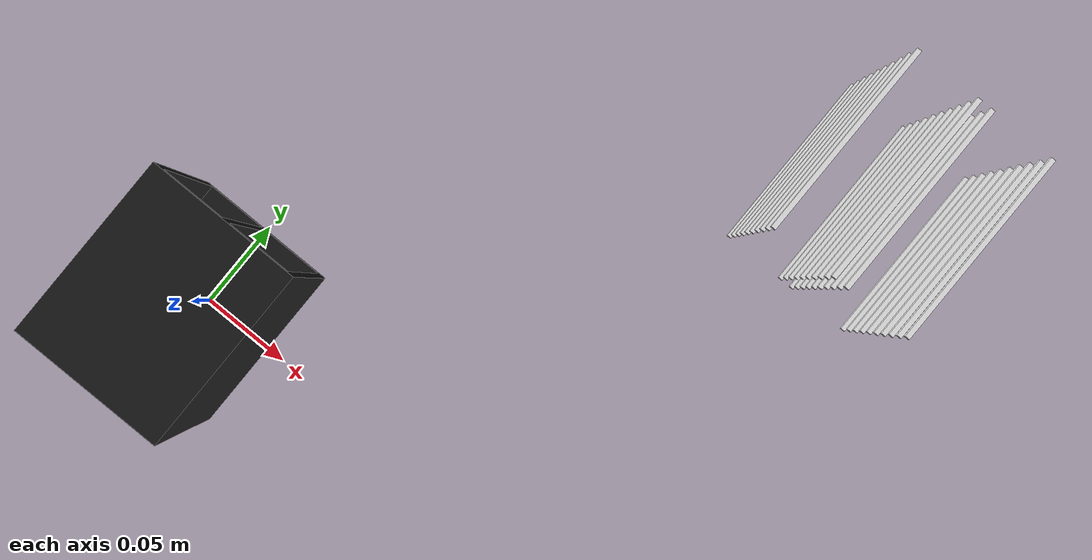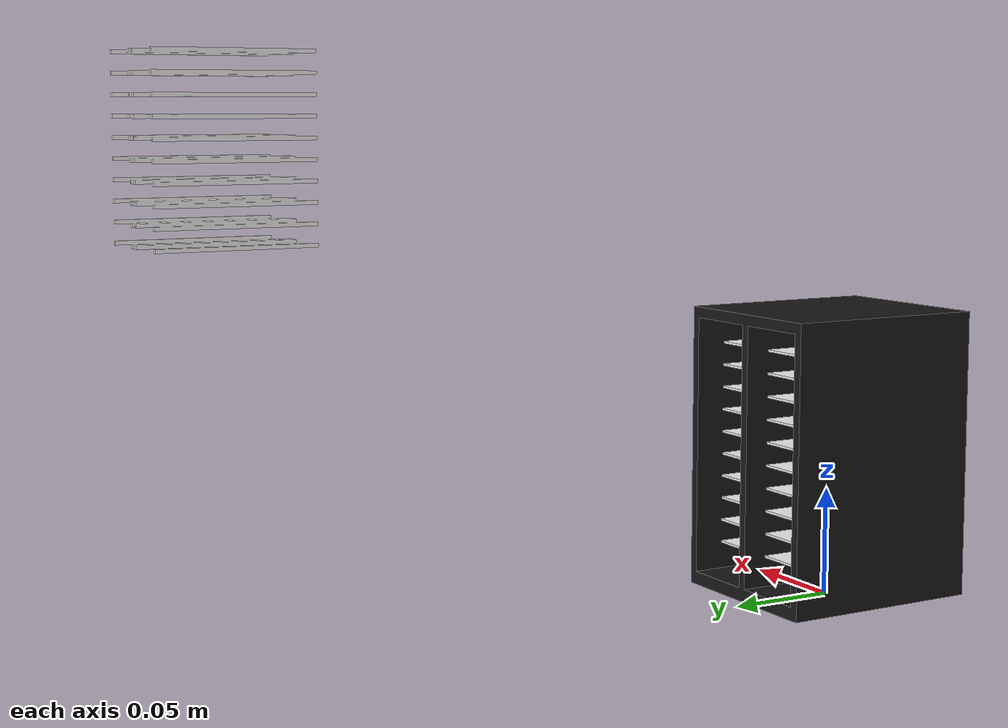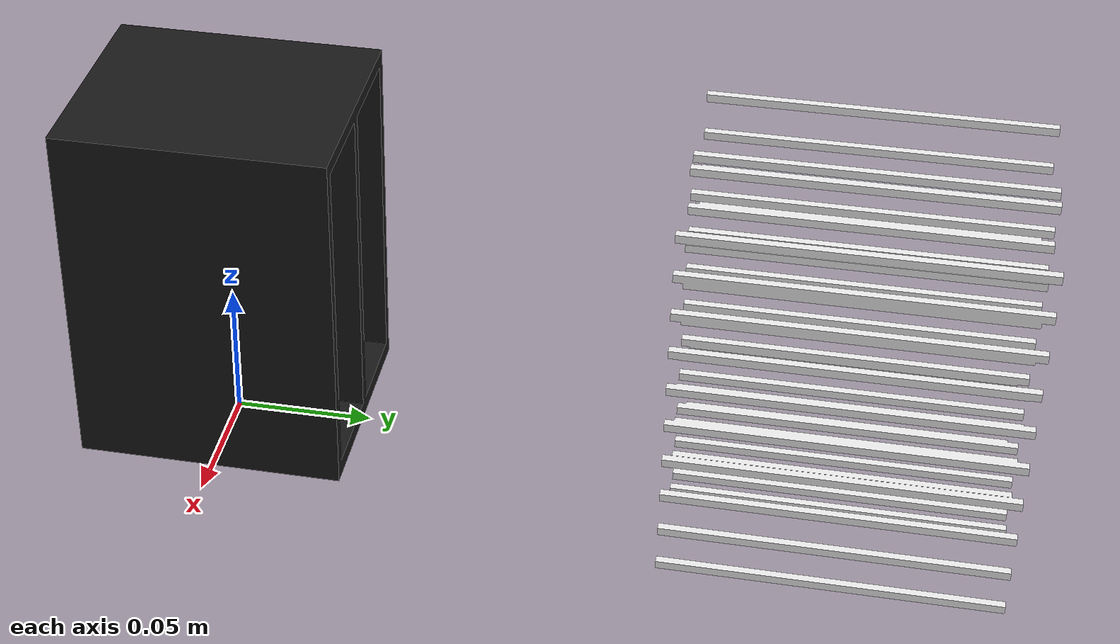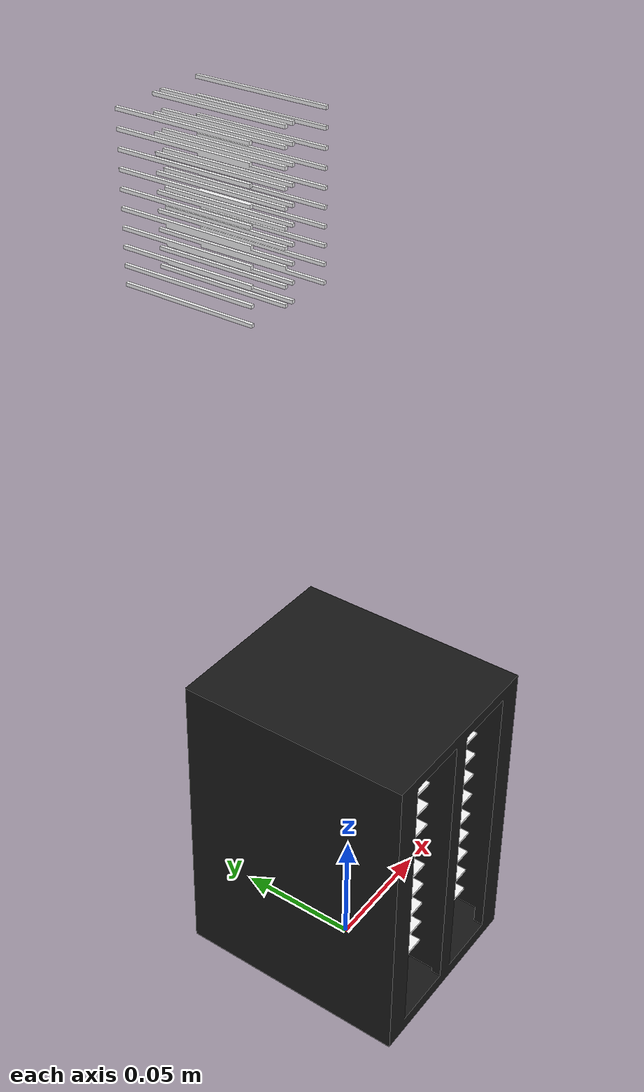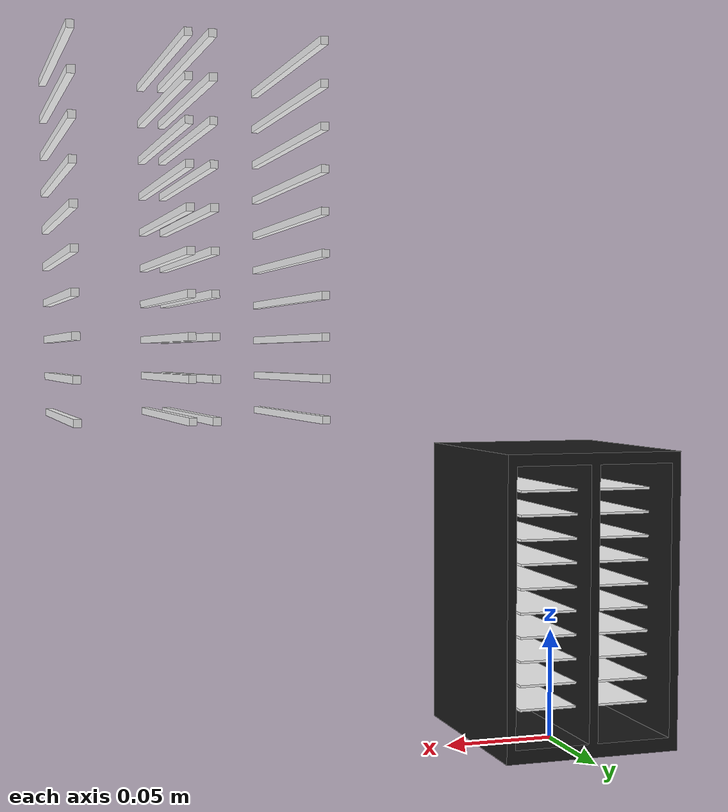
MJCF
<?xml version='1.0' encoding='utf-8'?>
<mujoco model="S60 scanner cassette | static asset inspection">
  <compiler angle="radian" />
  <visual>
    <global offwidth="1000" offheight="600" />
    <headlight ambient=".4 .4 .4" diffuse=".6 .6 .6" />
  </visual>
  <asset>
    <texture type="skybox" builtin="gradient" rgb1=".92 .95 .97" rgb2=".70 .78 .84" width="512" height="3072" />
    <mesh name="scanner_cassette_0" file="meshes/scanner_cassette_0.obj" inertia="shell" />
    <mesh name="scanner_cassette_1" file="meshes/scanner_cassette_1.obj" inertia="shell" />
    <mesh name="scanner_cassette_2" file="meshes/scanner_cassette_2.obj" inertia="shell" />
  </asset>
  <worldbody>
    <geom type="mesh" mesh="scanner_cassette_0" rgba="0.0980392157 0.0980392157 0.0980392157 1" contype="0" conaffinity="0" density="0" />
    <geom type="mesh" mesh="scanner_cassette_1" rgba="1 1 1 1" contype="0" conaffinity="0" density="0" />
    <geom type="mesh" mesh="scanner_cassette_2" rgba="0.960784314 0.960784314 0.964705882 1" contype="0" conaffinity="0" density="0" />
  </worldbody>
</mujoco>
